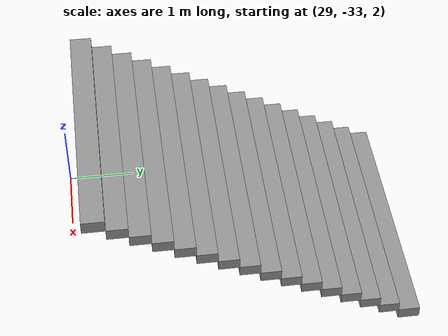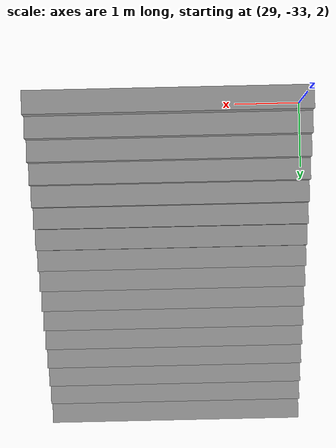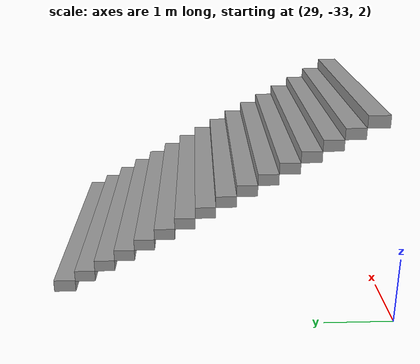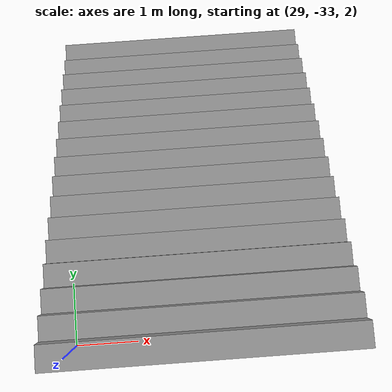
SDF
<sdf version="1.7">
 <world name="world">
  <include><uri>model://sun</uri></include>
  <model name="stairs_new_clone_0">
   <pose>31.03 -26.62000 2.565 0 -0 -1.570796</pose>
   <link name="Stairs">
    <pose>3 1e-06 0 0 -0 0</pose>
    <inertial>
     <mass>1</mass>
     <inertia><ixx>1</ixx><ixy>0</ixy><ixz>0</ixz><iyy>1</iyy><iyz>0</iyz><izz>1</izz></inertia>
    </inertial>
    <visual name="Stairs_Visual_7">
     <pose>0.70875 0 1.09375 0 -0 1.5708</pose>
     <geometry><box><size>3.66 0.28125 0.15625</size></box></geometry>
     <material>
      <script><uri>file://media/materials/scripts/gazebo.material</uri><name>Gazebo/Grey</name></script>
      <ambient>1 1 1 1</ambient>
      <shader type="pixel"><normal_map>__default__</normal_map></shader>
      <diffuse>0.7 0.7 0.7 1</diffuse>
      <specular>0.01 0.01 0.01 1</specular>
      <emissive>0 0 0 1</emissive>
     </material>
     <meta><layer>0</layer></meta>
    </visual>
    <visual name="Stairs_Visual_10">
     <pose>1.5525 0 1.5625 0 -0 1.5708</pose>
     <geometry><box><size>3.66 0.28125 0.15625</size></box></geometry>
     <material>
      <script><uri>file://media/materials/scripts/gazebo.material</uri><name>Gazebo/Grey</name></script>
      <ambient>1 1 1 1</ambient>
      <shader type="pixel"><normal_map>__default__</normal_map></shader>
      <diffuse>0.7 0.7 0.7 1</diffuse>
      <specular>0.01 0.01 0.01 1</specular>
      <emissive>0 0 0 1</emissive>
     </material>
     <meta><layer>0</layer></meta>
    </visual>
    <visual name="Stairs_Visual_11">
     <pose>1.83375 0 1.71875 0 -0 1.5708</pose>
     <geometry><box><size>3.66 0.28125 0.15625</size></box></geometry>
     <material>
      <script><uri>file://media/materials/scripts/gazebo.material</uri><name>Gazebo/Grey</name></script>
      <ambient>1 1 1 1</ambient>
      <shader type="pixel"><normal_map>__default__</normal_map></shader>
      <diffuse>0.7 0.7 0.7 1</diffuse>
      <specular>0.01 0.01 0.01 1</specular>
      <emissive>0 0 0 1</emissive>
     </material>
     <meta><layer>0</layer></meta>
    </visual>
    <visual name="Stairs_Visual_1">
     <pose>-0.97875 0 0.15625 0 -0 1.5708</pose>
     <geometry><box><size>3.66 0.28125 0.15625</size></box></geometry>
     <material>
      <script><uri>file://media/materials/scripts/gazebo.material</uri><name>Gazebo/Grey</name></script>
      <ambient>1 1 1 1</ambient>
      <shader type="pixel"><normal_map>__default__</normal_map></shader>
      <diffuse>0.7 0.7 0.7 1</diffuse>
      <specular>0.01 0.01 0.01 1</specular>
      <emissive>0 0 0 1</emissive>
     </material>
     <meta><layer>0</layer></meta>
    </visual>
    <visual name="Stairs_Visual_8">
     <pose>0.99 0 1.25 0 -0 1.5708</pose>
     <geometry><box><size>3.66 0.28125 0.15625</size></box></geometry>
     <material>
      <script><uri>file://media/materials/scripts/gazebo.material</uri><name>Gazebo/Grey</name></script>
      <ambient>1 1 1 1</ambient>
      <shader type="pixel"><normal_map>__default__</normal_map></shader>
      <diffuse>0.7 0.7 0.7 1</diffuse>
      <specular>0.01 0.01 0.01 1</specular>
      <emissive>0 0 0 1</emissive>
     </material>
     <meta><layer>0</layer></meta>
    </visual>
    <visual name="Stairs_Visual_2">
     <pose>-0.6975 0 0.3125 0 -0 1.5708</pose>
     <geometry><box><size>3.66 0.28125 0.15625</size></box></geometry>
     <material>
      <script><uri>file://media/materials/scripts/gazebo.material</uri><name>Gazebo/Grey</name></script>
      <ambient>1 1 1 1</ambient>
      <shader type="pixel"><normal_map>__default__</normal_map></shader>
      <diffuse>0.7 0.7 0.7 1</diffuse>
      <specular>0.01 0.01 0.01 1</specular>
      <emissive>0 0 0 1</emissive>
     </material>
     <meta><layer>0</layer></meta>
    </visual>
    <visual name="Stairs_Visual_0">
     <pose>-1.27 0 0.005 0 -0 1.5708</pose>
     <geometry><box><size>3.66 0.3 0.17</size></box></geometry>
     <material>
      <script><uri>file://media/materials/scripts/gazebo.material</uri><name>Gazebo/Grey</name></script>
      <ambient>1 1 1 1</ambient>
      <shader type="pixel"><normal_map>__default__</normal_map></shader>
      <diffuse>0.7 0.7 0.7 1</diffuse>
      <specular>0.01 0.01 0.01 1</specular>
      <emissive>0 0 0 1</emissive>
     </material>
     <meta><layer>0</layer></meta>
    </visual>
    <visual name="Stairs_Visual_12">
     <pose>2.115 0 1.875 0 -0 1.5708</pose>
     <geometry><box><size>3.66 0.28125 0.15625</size></box></geometry>
     <material>
      <script><uri>file://media/materials/scripts/gazebo.material</uri><name>Gazebo/Grey</name></script>
      <ambient>1 1 1 1</ambient>
      <shader type="pixel"><normal_map>__default__</normal_map></shader>
      <diffuse>0.7 0.7 0.7 1</diffuse>
      <specular>0.01 0.01 0.01 1</specular>
      <emissive>0 0 0 1</emissive>
     </material>
     <meta><layer>0</layer></meta>
    </visual>
    <visual name="Stairs_Visual_9">
     <pose>1.27125 0 1.40625 0 -0 1.5708</pose>
     <geometry><box><size>3.66 0.28125 0.15625</size></box></geometry>
     <material>
      <script><uri>file://media/materials/scripts/gazebo.material</uri><name>Gazebo/Grey</name></script>
      <ambient>1 1 1 1</ambient>
      <shader type="pixel"><normal_map>__default__</normal_map></shader>
      <diffuse>0.7 0.7 0.7 1</diffuse>
      <specular>0.01 0.01 0.01 1</specular>
      <emissive>0 0 0 1</emissive>
     </material>
     <meta><layer>0</layer></meta>
    </visual>
    <visual name="Stairs_Visual_13">
     <pose>2.39625 0 2.03125 0 -0 1.5708</pose>
     <geometry><box><size>3.66 0.28125 0.15625</size></box></geometry>
     <material>
      <script><uri>file://media/materials/scripts/gazebo.material</uri><name>Gazebo/Grey</name></script>
      <ambient>1 1 1 1</ambient>
      <shader type="pixel"><normal_map>__default__</normal_map></shader>
      <diffuse>0.7 0.7 0.7 1</diffuse>
      <specular>0.01 0.01 0.01 1</specular>
      <emissive>0 0 0 1</emissive>
     </material>
     <meta><layer>0</layer></meta>
    </visual>
    <visual name="Stairs_Visual_4">
     <pose>-0.135 0 0.625 0 -0 1.5708</pose>
     <geometry><box><size>3.66 0.28125 0.15625</size></box></geometry>
     <material>
      <script><uri>file://media/materials/scripts/gazebo.material</uri><name>Gazebo/Grey</name></script>
      <ambient>1 1 1 1</ambient>
      <shader type="pixel"><normal_map>__default__</normal_map></shader>
      <diffuse>0.7 0.7 0.7 1</diffuse>
      <specular>0.01 0.01 0.01 1</specular>
      <emissive>0 0 0 1</emissive>
     </material>
     <meta><layer>0</layer></meta>
    </visual>
    <visual name="Stairs_Visual_5">
     <pose>0.14625 0 0.78125 0 -0 1.5708</pose>
     <geometry><box><size>3.66 0.28125 0.15625</size></box></geometry>
     <material>
      <script><uri>file://media/materials/scripts/gazebo.material</uri><name>Gazebo/Grey</name></script>
      <ambient>1 1 1 1</ambient>
      <shader type="pixel"><normal_map>__default__</normal_map></shader>
      <diffuse>0.7 0.7 0.7 1</diffuse>
      <specular>0.01 0.01 0.01 1</specular>
      <emissive>0 0 0 1</emissive>
     </material>
     <meta><layer>0</layer></meta>
    </visual>
    <visual name="Stairs_Visual_15">
     <pose>2.969 0 2.35 0 -0 1.5708</pose>
     <geometry><box><size>3.66 0.3 0.17</size></box></geometry>
     <material>
      <script><uri>file://media/materials/scripts/gazebo.material</uri><name>Gazebo/Grey</name></script>
      <ambient>1 1 1 1</ambient>
      <shader type="pixel"><normal_map>__default__</normal_map></shader>
      <diffuse>0.7 0.7 0.7 1</diffuse>
      <specular>0.01 0.01 0.01 1</specular>
      <emissive>0 0 0 1</emissive>
     </material>
     <meta><layer>0</layer></meta>
    </visual>
    <visual name="Stairs_Visual_3">
     <pose>-0.41625 0 0.46875 0 -0 1.5708</pose>
     <geometry><box><size>3.66 0.28125 0.15625</size></box></geometry>
     <material>
      <script><uri>file://media/materials/scripts/gazebo.material</uri><name>Gazebo/Grey</name></script>
      <ambient>1 1 1 1</ambient>
      <shader type="pixel"><normal_map>__default__</normal_map></shader>
      <diffuse>0.7 0.7 0.7 1</diffuse>
      <specular>0.01 0.01 0.01 1</specular>
      <emissive>0 0 0 1</emissive>
     </material>
     <meta><layer>0</layer></meta>
    </visual>
    <visual name="Stairs_Visual_6">
     <pose>0.4275 0 0.9375 0 -0 1.5708</pose>
     <geometry><box><size>3.66 0.28125 0.15625</size></box></geometry>
     <material>
      <script><uri>file://media/materials/scripts/gazebo.material</uri><name>Gazebo/Grey</name></script>
      <ambient>1 1 1 1</ambient>
      <shader type="pixel"><normal_map>__default__</normal_map></shader>
      <diffuse>0.7 0.7 0.7 1</diffuse>
      <specular>0.01 0.01 0.01 1</specular>
      <emissive>0 0 0 1</emissive>
     </material>
     <meta><layer>0</layer></meta>
    </visual>
    <visual name="Stairs_Visual_14">
     <pose>2.6775 0 2.1875 0 -0 1.5708</pose>
     <geometry><box><size>3.66 0.28125 0.15625</size></box></geometry>
     <material>
      <script><uri>file://media/materials/scripts/gazebo.material</uri><name>Gazebo/Grey</name></script>
      <ambient>1 1 1 1</ambient>
      <shader type="pixel"><normal_map>__default__</normal_map></shader>
      <diffuse>0.7 0.7 0.7 1</diffuse>
      <specular>0.01 0.01 0.01 1</specular>
      <emissive>0 0 0 1</emissive>
     </material>
     <meta><layer>0</layer></meta>
    </visual>
    <collision name="Stairs_Collision_9">
     <pose>1.27125 0 1.40625 0 -0 1.5708</pose>
     <geometry><box><size>3.66 0.28125 0.15625</size></box></geometry>
     <surface>
      <friction>
       <ode><mu>1</mu><mu2>1</mu2><fdir1>0 0 0</fdir1><slip1>0</slip1><slip2>0</slip2></ode>
       <torsional>
        <coefficient>1</coefficient>
        <patch_radius>0</patch_radius>
        <surface_radius>0</surface_radius>
        <use_patch_radius>1</use_patch_radius>
        <ode><slip>0</slip></ode>
       </torsional>
      </friction>
      <bounce><restitution_coefficient>0</restitution_coefficient><threshold>1e+06</threshold></bounce>
      <contact>
       <collide_without_contact>0</collide_without_contact>
       <collide_without_contact_bitmask>1</collide_without_contact_bitmask>
       <collide_bitmask>1</collide_bitmask>
       <ode>
        <soft_cfm>0</soft_cfm>
        <soft_erp>0.2</soft_erp>
        <kp>1e+13</kp>
        <kd>1</kd>
        <max_vel>0.01</max_vel>
        <min_depth>0</min_depth>
       </ode>
       <bullet>
        <split_impulse>1</split_impulse>
        <split_impulse_penetration_threshold>-0.01</split_impulse_penetration_threshold>
        <soft_cfm>0</soft_cfm>
        <soft_erp>0.2</soft_erp>
        <kp>1e+13</kp>
        <kd>1</kd>
       </bullet>
      </contact>
     </surface>
    </collision>
    <collision name="Stairs_Collision_1">
     <pose>-0.97875 0 0.15625 0 -0 1.5708</pose>
     <geometry><box><size>3.66 0.3 0.1566</size></box></geometry>
     <surface>
      <friction>
       <ode><mu>1</mu><mu2>1</mu2><fdir1>0 0 0</fdir1><slip1>0</slip1><slip2>0</slip2></ode>
       <torsional>
        <coefficient>1</coefficient>
        <patch_radius>0</patch_radius>
        <surface_radius>0</surface_radius>
        <use_patch_radius>1</use_patch_radius>
        <ode><slip>0</slip></ode>
       </torsional>
      </friction>
      <bounce><restitution_coefficient>0</restitution_coefficient><threshold>1e+06</threshold></bounce>
      <contact>
       <collide_without_contact>0</collide_without_contact>
       <collide_without_contact_bitmask>1</collide_without_contact_bitmask>
       <collide_bitmask>1</collide_bitmask>
       <ode>
        <soft_cfm>0</soft_cfm>
        <soft_erp>0.2</soft_erp>
        <kp>1e+13</kp>
        <kd>1</kd>
        <max_vel>0.01</max_vel>
        <min_depth>0</min_depth>
       </ode>
       <bullet>
        <split_impulse>1</split_impulse>
        <split_impulse_penetration_threshold>-0.01</split_impulse_penetration_threshold>
        <soft_cfm>0</soft_cfm>
        <soft_erp>0.2</soft_erp>
        <kp>1e+13</kp>
        <kd>1</kd>
       </bullet>
      </contact>
     </surface>
    </collision>
    <collision name="Stairs_Collision_6">
     <pose>0.4275 0 0.9375 0 -0 1.5708</pose>
     <geometry><box><size>3.66 0.28125 0.15625</size></box></geometry>
     <surface>
      <friction>
       <ode><mu>1</mu><mu2>1</mu2><fdir1>0 0 0</fdir1><slip1>0</slip1><slip2>0</slip2></ode>
       <torsional>
        <coefficient>1</coefficient>
        <patch_radius>0</patch_radius>
        <surface_radius>0</surface_radius>
        <use_patch_radius>1</use_patch_radius>
        <ode><slip>0</slip></ode>
       </torsional>
      </friction>
      <bounce><restitution_coefficient>0</restitution_coefficient><threshold>1e+06</threshold></bounce>
      <contact>
       <collide_without_contact>0</collide_without_contact>
       <collide_without_contact_bitmask>1</collide_without_contact_bitmask>
       <collide_bitmask>1</collide_bitmask>
       <ode>
        <soft_cfm>0</soft_cfm>
        <soft_erp>0.2</soft_erp>
        <kp>1e+13</kp>
        <kd>1</kd>
        <max_vel>0.01</max_vel>
        <min_depth>0</min_depth>
       </ode>
       <bullet>
        <split_impulse>1</split_impulse>
        <split_impulse_penetration_threshold>-0.01</split_impulse_penetration_threshold>
        <soft_cfm>0</soft_cfm>
        <soft_erp>0.2</soft_erp>
        <kp>1e+13</kp>
        <kd>1</kd>
       </bullet>
      </contact>
     </surface>
    </collision>
    <collision name="Stairs_Collision_7">
     <pose>0.70875 0 1.09375 0 -0 1.5708</pose>
     <geometry><box><size>3.66 0.28125 0.15625</size></box></geometry>
     <surface>
      <friction>
       <ode><mu>1</mu><mu2>1</mu2><fdir1>0 0 0</fdir1><slip1>0</slip1><slip2>0</slip2></ode>
       <torsional>
        <coefficient>1</coefficient>
        <patch_radius>0</patch_radius>
        <surface_radius>0</surface_radius>
        <use_patch_radius>1</use_patch_radius>
        <ode><slip>0</slip></ode>
       </torsional>
      </friction>
      <bounce><restitution_coefficient>0</restitution_coefficient><threshold>1e+06</threshold></bounce>
      <contact>
       <collide_without_contact>0</collide_without_contact>
       <collide_without_contact_bitmask>1</collide_without_contact_bitmask>
       <collide_bitmask>1</collide_bitmask>
       <ode>
        <soft_cfm>0</soft_cfm>
        <soft_erp>0.2</soft_erp>
        <kp>1e+13</kp>
        <kd>1</kd>
        <max_vel>0.01</max_vel>
        <min_depth>0</min_depth>
       </ode>
       <bullet>
        <split_impulse>1</split_impulse>
        <split_impulse_penetration_threshold>-0.01</split_impulse_penetration_threshold>
        <soft_cfm>0</soft_cfm>
        <soft_erp>0.2</soft_erp>
        <kp>1e+13</kp>
        <kd>1</kd>
       </bullet>
      </contact>
     </surface>
    </collision>
    <collision name="Stairs_Collision_5">
     <pose>0.14625 0 0.78125 0 -0 1.5708</pose>
     <geometry><box><size>3.66 0.28125 0.15625</size></box></geometry>
     <surface>
      <friction>
       <ode><mu>1</mu><mu2>1</mu2><fdir1>0 0 0</fdir1><slip1>0</slip1><slip2>0</slip2></ode>
       <torsional>
        <coefficient>1</coefficient>
        <patch_radius>0</patch_radius>
        <surface_radius>0</surface_radius>
        <use_patch_radius>1</use_patch_radius>
        <ode><slip>0</slip></ode>
       </torsional>
      </friction>
      <bounce><restitution_coefficient>0</restitution_coefficient><threshold>1e+06</threshold></bounce>
      <contact>
       <collide_without_contact>0</collide_without_contact>
       <collide_without_contact_bitmask>1</collide_without_contact_bitmask>
       <collide_bitmask>1</collide_bitmask>
       <ode>
        <soft_cfm>0</soft_cfm>
        <soft_erp>0.2</soft_erp>
        <kp>1e+13</kp>
        <kd>1</kd>
        <max_vel>0.01</max_vel>
        <min_depth>0</min_depth>
       </ode>
       <bullet>
        <split_impulse>1</split_impulse>
        <split_impulse_penetration_threshold>-0.01</split_impulse_penetration_threshold>
        <soft_cfm>0</soft_cfm>
        <soft_erp>0.2</soft_erp>
        <kp>1e+13</kp>
        <kd>1</kd>
       </bullet>
      </contact>
     </surface>
    </collision>
    <collision name="Stairs_Collision_10">
     <pose>1.5525 0 1.5625 0 -0 1.5708</pose>
     <geometry><box><size>3.66 0.28125 0.15625</size></box></geometry>
     <surface>
      <friction>
       <ode><mu>1</mu><mu2>1</mu2><fdir1>0 0 0</fdir1><slip1>0</slip1><slip2>0</slip2></ode>
       <torsional>
        <coefficient>1</coefficient>
        <patch_radius>0</patch_radius>
        <surface_radius>0</surface_radius>
        <use_patch_radius>1</use_patch_radius>
        <ode><slip>0</slip></ode>
       </torsional>
      </friction>
      <bounce><restitution_coefficient>0</restitution_coefficient><threshold>1e+06</threshold></bounce>
      <contact>
       <collide_without_contact>0</collide_without_contact>
       <collide_without_contact_bitmask>1</collide_without_contact_bitmask>
       <collide_bitmask>1</collide_bitmask>
       <ode>
        <soft_cfm>0</soft_cfm>
        <soft_erp>0.2</soft_erp>
        <kp>1e+13</kp>
        <kd>1</kd>
        <max_vel>0.01</max_vel>
        <min_depth>0</min_depth>
       </ode>
       <bullet>
        <split_impulse>1</split_impulse>
        <split_impulse_penetration_threshold>-0.01</split_impulse_penetration_threshold>
        <soft_cfm>0</soft_cfm>
        <soft_erp>0.2</soft_erp>
        <kp>1e+13</kp>
        <kd>1</kd>
       </bullet>
      </contact>
     </surface>
    </collision>
    <collision name="Stairs_Collision_2">
     <pose>-0.6975 0 0.3125 0 -0 1.5708</pose>
     <geometry><box><size>3.66 0.28125 0.15625</size></box></geometry>
     <surface>
      <friction>
       <ode><mu>1</mu><mu2>1</mu2><fdir1>0 0 0</fdir1><slip1>0</slip1><slip2>0</slip2></ode>
       <torsional>
        <coefficient>1</coefficient>
        <patch_radius>0</patch_radius>
        <surface_radius>0</surface_radius>
        <use_patch_radius>1</use_patch_radius>
        <ode><slip>0</slip></ode>
       </torsional>
      </friction>
      <bounce><restitution_coefficient>0</restitution_coefficient><threshold>1e+06</threshold></bounce>
      <contact>
       <collide_without_contact>0</collide_without_contact>
       <collide_without_contact_bitmask>1</collide_without_contact_bitmask>
       <collide_bitmask>1</collide_bitmask>
       <ode>
        <soft_cfm>0</soft_cfm>
        <soft_erp>0.2</soft_erp>
        <kp>1e+13</kp>
        <kd>1</kd>
        <max_vel>0.01</max_vel>
        <min_depth>0</min_depth>
       </ode>
       <bullet>
        <split_impulse>1</split_impulse>
        <split_impulse_penetration_threshold>-0.01</split_impulse_penetration_threshold>
        <soft_cfm>0</soft_cfm>
        <soft_erp>0.2</soft_erp>
        <kp>1e+13</kp>
        <kd>1</kd>
       </bullet>
      </contact>
     </surface>
    </collision>
    <collision name="Stairs_Collision_8">
     <pose>0.99 0 1.25 0 -0 1.5708</pose>
     <geometry><box><size>3.66 0.28125 0.15625</size></box></geometry>
     <surface>
      <friction>
       <ode><mu>1</mu><mu2>1</mu2><fdir1>0 0 0</fdir1><slip1>0</slip1><slip2>0</slip2></ode>
       <torsional>
        <coefficient>1</coefficient>
        <patch_radius>0</patch_radius>
        <surface_radius>0</surface_radius>
        <use_patch_radius>1</use_patch_radius>
        <ode><slip>0</slip></ode>
       </torsional>
      </friction>
      <bounce><restitution_coefficient>0</restitution_coefficient><threshold>1e+06</threshold></bounce>
      <contact>
       <collide_without_contact>0</collide_without_contact>
       <collide_without_contact_bitmask>1</collide_without_contact_bitmask>
       <collide_bitmask>1</collide_bitmask>
       <ode>
        <soft_cfm>0</soft_cfm>
        <soft_erp>0.2</soft_erp>
        <kp>1e+13</kp>
        <kd>1</kd>
        <max_vel>0.01</max_vel>
        <min_depth>0</min_depth>
       </ode>
       <bullet>
        <split_impulse>1</split_impulse>
        <split_impulse_penetration_threshold>-0.01</split_impulse_penetration_threshold>
        <soft_cfm>0</soft_cfm>
        <soft_erp>0.2</soft_erp>
        <kp>1e+13</kp>
        <kd>1</kd>
       </bullet>
      </contact>
     </surface>
    </collision>
    <collision name="Stairs_Collision_4">
     <pose>-0.135 0 0.625 0 -0 1.5708</pose>
     <geometry><box><size>3.66 0.30125 0.15625</size></box></geometry>
     <surface>
      <friction>
       <ode><mu>1</mu><mu2>1</mu2><fdir1>0 0 0</fdir1><slip1>0</slip1><slip2>0</slip2></ode>
       <torsional>
        <coefficient>1</coefficient>
        <patch_radius>0</patch_radius>
        <surface_radius>0</surface_radius>
        <use_patch_radius>1</use_patch_radius>
        <ode><slip>0</slip></ode>
       </torsional>
      </friction>
      <bounce><restitution_coefficient>0</restitution_coefficient><threshold>1e+06</threshold></bounce>
      <contact>
       <collide_without_contact>0</collide_without_contact>
       <collide_without_contact_bitmask>1</collide_without_contact_bitmask>
       <collide_bitmask>1</collide_bitmask>
       <ode>
        <soft_cfm>0</soft_cfm>
        <soft_erp>0.2</soft_erp>
        <kp>1e+13</kp>
        <kd>1</kd>
        <max_vel>0.01</max_vel>
        <min_depth>0</min_depth>
       </ode>
       <bullet>
        <split_impulse>1</split_impulse>
        <split_impulse_penetration_threshold>-0.01</split_impulse_penetration_threshold>
        <soft_cfm>0</soft_cfm>
        <soft_erp>0.2</soft_erp>
        <kp>1e+13</kp>
        <kd>1</kd>
       </bullet>
      </contact>
     </surface>
    </collision>
    <collision name="Stairs_Collision_13">
     <pose>2.39625 0 2.03125 0 -0 1.5708</pose>
     <geometry><box><size>3.66 0.28125 0.15625</size></box></geometry>
     <surface>
      <friction>
       <ode><mu>1</mu><mu2>1</mu2><fdir1>0 0 0</fdir1><slip1>0</slip1><slip2>0</slip2></ode>
       <torsional>
        <coefficient>1</coefficient>
        <patch_radius>0</patch_radius>
        <surface_radius>0</surface_radius>
        <use_patch_radius>1</use_patch_radius>
        <ode><slip>0</slip></ode>
       </torsional>
      </friction>
      <bounce><restitution_coefficient>0</restitution_coefficient><threshold>1e+06</threshold></bounce>
      <contact>
       <collide_without_contact>0</collide_without_contact>
       <collide_without_contact_bitmask>1</collide_without_contact_bitmask>
       <collide_bitmask>1</collide_bitmask>
       <ode>
        <soft_cfm>0</soft_cfm>
        <soft_erp>0.2</soft_erp>
        <kp>1e+13</kp>
        <kd>1</kd>
        <max_vel>0.01</max_vel>
        <min_depth>0</min_depth>
       </ode>
       <bullet>
        <split_impulse>1</split_impulse>
        <split_impulse_penetration_threshold>-0.01</split_impulse_penetration_threshold>
        <soft_cfm>0</soft_cfm>
        <soft_erp>0.2</soft_erp>
        <kp>1e+13</kp>
        <kd>1</kd>
       </bullet>
      </contact>
     </surface>
    </collision>
    <collision name="Stairs_Collision_11">
     <pose>1.83375 0 1.71875 0 -0 1.5708</pose>
     <geometry><box><size>3.66 0.28125 0.15625</size></box></geometry>
     <surface>
      <friction>
       <ode><mu>1</mu><mu2>1</mu2><fdir1>0 0 0</fdir1><slip1>0</slip1><slip2>0</slip2></ode>
       <torsional>
        <coefficient>1</coefficient>
        <patch_radius>0</patch_radius>
        <surface_radius>0</surface_radius>
        <use_patch_radius>1</use_patch_radius>
        <ode><slip>0</slip></ode>
       </torsional>
      </friction>
      <bounce><restitution_coefficient>0</restitution_coefficient><threshold>1e+06</threshold></bounce>
      <contact>
       <collide_without_contact>0</collide_without_contact>
       <collide_without_contact_bitmask>1</collide_without_contact_bitmask>
       <collide_bitmask>1</collide_bitmask>
       <ode>
        <soft_cfm>0</soft_cfm>
        <soft_erp>0.2</soft_erp>
        <kp>1e+13</kp>
        <kd>1</kd>
        <max_vel>0.01</max_vel>
        <min_depth>0</min_depth>
       </ode>
       <bullet>
        <split_impulse>1</split_impulse>
        <split_impulse_penetration_threshold>-0.01</split_impulse_penetration_threshold>
        <soft_cfm>0</soft_cfm>
        <soft_erp>0.2</soft_erp>
        <kp>1e+13</kp>
        <kd>1</kd>
       </bullet>
      </contact>
     </surface>
    </collision>
    <collision name="Stairs_Collision_0">
     <pose>-1.27 0 -0.005 0 -0 1.5708</pose>
     <geometry><box><size>3.66 0.3 0.2</size></box></geometry>
     <surface>
      <friction>
       <ode><mu>1</mu><mu2>1</mu2><fdir1>0 0 0</fdir1><slip1>0</slip1><slip2>0</slip2></ode>
       <torsional>
        <coefficient>1</coefficient>
        <patch_radius>0</patch_radius>
        <surface_radius>0</surface_radius>
        <use_patch_radius>1</use_patch_radius>
        <ode><slip>0</slip></ode>
       </torsional>
      </friction>
      <bounce><restitution_coefficient>0</restitution_coefficient><threshold>1e+06</threshold></bounce>
      <contact>
       <collide_without_contact>0</collide_without_contact>
       <collide_without_contact_bitmask>1</collide_without_contact_bitmask>
       <collide_bitmask>1</collide_bitmask>
       <ode>
        <soft_cfm>0</soft_cfm>
        <soft_erp>0.2</soft_erp>
        <kp>1e+13</kp>
        <kd>1</kd>
        <max_vel>0.01</max_vel>
        <min_depth>0</min_depth>
       </ode>
       <bullet>
        <split_impulse>1</split_impulse>
        <split_impulse_penetration_threshold>-0.01</split_impulse_penetration_threshold>
        <soft_cfm>0</soft_cfm>
        <soft_erp>0.2</soft_erp>
        <kp>1e+13</kp>
        <kd>1</kd>
       </bullet>
      </contact>
     </surface>
    </collision>
    <collision name="Stairs_Collision_3">
     <pose>-0.41625 0 0.46875 0 -0 1.5708</pose>
     <geometry><box><size>3.66 0.28125 0.15625</size></box></geometry>
     <surface>
      <friction>
       <ode><mu>1</mu><mu2>1</mu2><fdir1>0 0 0</fdir1><slip1>0</slip1><slip2>0</slip2></ode>
       <torsional>
        <coefficient>1</coefficient>
        <patch_radius>0</patch_radius>
        <surface_radius>0</surface_radius>
        <use_patch_radius>1</use_patch_radius>
        <ode><slip>0</slip></ode>
       </torsional>
      </friction>
      <bounce><restitution_coefficient>0</restitution_coefficient><threshold>1e+06</threshold></bounce>
      <contact>
       <collide_without_contact>0</collide_without_contact>
       <collide_without_contact_bitmask>1</collide_without_contact_bitmask>
       <collide_bitmask>1</collide_bitmask>
       <ode>
        <soft_cfm>0</soft_cfm>
        <soft_erp>0.2</soft_erp>
        <kp>1e+13</kp>
        <kd>1</kd>
        <max_vel>0.01</max_vel>
        <min_depth>0</min_depth>
       </ode>
       <bullet>
        <split_impulse>1</split_impulse>
        <split_impulse_penetration_threshold>-0.01</split_impulse_penetration_threshold>
        <soft_cfm>0</soft_cfm>
        <soft_erp>0.2</soft_erp>
        <kp>1e+13</kp>
        <kd>1</kd>
       </bullet>
      </contact>
     </surface>
    </collision>
    <collision name="Stairs_Collision_12">
     <pose>2.115 0 1.875 0 -0 1.5708</pose>
     <geometry><box><size>3.66 0.28125 0.15625</size></box></geometry>
     <surface>
      <friction>
       <ode><mu>1</mu><mu2>1</mu2><fdir1>0 0 0</fdir1><slip1>0</slip1><slip2>0</slip2></ode>
       <torsional>
        <coefficient>1</coefficient>
        <patch_radius>0</patch_radius>
        <surface_radius>0</surface_radius>
        <use_patch_radius>1</use_patch_radius>
        <ode><slip>0</slip></ode>
       </torsional>
      </friction>
      <bounce><restitution_coefficient>0</restitution_coefficient><threshold>1e+06</threshold></bounce>
      <contact>
       <collide_without_contact>0</collide_without_contact>
       <collide_without_contact_bitmask>1</collide_without_contact_bitmask>
       <collide_bitmask>1</collide_bitmask>
       <ode>
        <soft_cfm>0</soft_cfm>
        <soft_erp>0.2</soft_erp>
        <kp>1e+13</kp>
        <kd>1</kd>
        <max_vel>0.01</max_vel>
        <min_depth>0</min_depth>
       </ode>
       <bullet>
        <split_impulse>1</split_impulse>
        <split_impulse_penetration_threshold>-0.01</split_impulse_penetration_threshold>
        <soft_cfm>0</soft_cfm>
        <soft_erp>0.2</soft_erp>
        <kp>1e+13</kp>
        <kd>1</kd>
       </bullet>
      </contact>
     </surface>
    </collision>
    <collision name="Stairs_Collision_14">
     <pose>2.6775 0 2.1875 0 -0 1.5708</pose>
     <geometry><box><size>3.66 0.28125 0.15625</size></box></geometry>
     <surface>
      <friction>
       <ode><mu>1</mu><mu2>1</mu2><fdir1>0 0 0</fdir1><slip1>0</slip1><slip2>0</slip2></ode>
       <torsional>
        <coefficient>1</coefficient>
        <patch_radius>0</patch_radius>
        <surface_radius>0</surface_radius>
        <use_patch_radius>1</use_patch_radius>
        <ode><slip>0</slip></ode>
       </torsional>
      </friction>
      <bounce><restitution_coefficient>0</restitution_coefficient><threshold>1e+06</threshold></bounce>
      <contact>
       <collide_without_contact>0</collide_without_contact>
       <collide_without_contact_bitmask>1</collide_without_contact_bitmask>
       <collide_bitmask>1</collide_bitmask>
       <ode>
        <soft_cfm>0</soft_cfm>
        <soft_erp>0.2</soft_erp>
        <kp>1e+13</kp>
        <kd>1</kd>
        <max_vel>0.01</max_vel>
        <min_depth>0</min_depth>
       </ode>
       <bullet>
        <split_impulse>1</split_impulse>
        <split_impulse_penetration_threshold>-0.01</split_impulse_penetration_threshold>
        <soft_cfm>0</soft_cfm>
        <soft_erp>0.2</soft_erp>
        <kp>1e+13</kp>
        <kd>1</kd>
       </bullet>
      </contact>
     </surface>
    </collision>
    <collision name="Stairs_Collision_15">
     <pose>2.969 0 2.35 0 -0 1.5708</pose>
     <geometry><box><size>3.66 0.3 0.17</size></box></geometry>
     <surface>
      <friction>
       <ode><mu>1</mu><mu2>1</mu2><fdir1>0 0 0</fdir1><slip1>0</slip1><slip2>0</slip2></ode>
       <torsional>
        <coefficient>1</coefficient>
        <patch_radius>0</patch_radius>
        <surface_radius>0</surface_radius>
        <use_patch_radius>1</use_patch_radius>
        <ode><slip>0</slip></ode>
       </torsional>
      </friction>
      <bounce><restitution_coefficient>0</restitution_coefficient><threshold>1e+06</threshold></bounce>
      <contact>
       <collide_without_contact>0</collide_without_contact>
       <collide_without_contact_bitmask>1</collide_without_contact_bitmask>
       <collide_bitmask>1</collide_bitmask>
       <ode>
        <soft_cfm>0</soft_cfm>
        <soft_erp>0.2</soft_erp>
        <kp>1e+13</kp>
        <kd>1</kd>
        <max_vel>0.01</max_vel>
        <min_depth>0</min_depth>
       </ode>
       <bullet>
        <split_impulse>1</split_impulse>
        <split_impulse_penetration_threshold>-0.01</split_impulse_penetration_threshold>
        <soft_cfm>0</soft_cfm>
        <soft_erp>0.2</soft_erp>
        <kp>1e+13</kp>
        <kd>1</kd>
       </bullet>
      </contact>
     </surface>
    </collision>
    <scale>1 1 1</scale>
   </link>
   <static>1</static>
   <pose>36.5717 -39.1437 0.065 0 -0 1.5708</pose>
  </model>
 </world>
</sdf>
